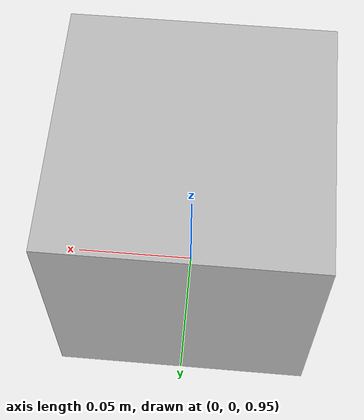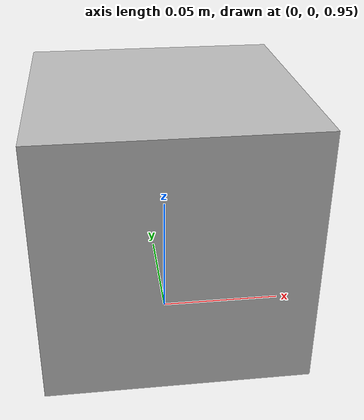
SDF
<sdf version="1.10">
	<world name="iflight_world">
		<physics type="ignored">
			<max_step_size>0.001</max_step_size>
			<real_time_factor>1.0</real_time_factor>
		</physics>
        <plugin name='gz::sim::systems::Physics' filename='gz-sim-physics-system'/>
        <plugin name='gz::sim::systems::Sensors' filename='gz-sim-sensors-system'>
            <render_engine>ogre2</render_engine>
        </plugin>
        <plugin name='gz::sim::systems::UserCommands' filename='gz-sim-user-commands-system'/>
        <plugin name='gz::sim::systems::SceneBroadcaster' filename='gz-sim-scene-broadcaster-system'/>
        <scene>
            <ambient>1 1 1 1</ambient>
            <background>0.800000012 0.800000012 0.800000012 1</background>
            <grid>true</grid>
            <shadows>true</shadows>
            <sky/>
        </scene>

        <gui fullscreen='false'>
            <plugin name='3D View' filename='MinimalScene'>
                <gz-gui>
                <title>3D View</title>
                <property type='bool' key='showTitleBar'>false</property>
                <property type='string' key='state'>docked</property>
                </gz-gui>
                <engine>ogre2</engine>
                <scene>scene</scene>
                <ambient_light>0.4 0.4 0.4</ambient_light>
                <background_color>0.8 0.8 0.8</background_color>
                <camera_pose>-6 0 6 0 0.5 0</camera_pose>
            </plugin>
            <plugin name='Entity context menu' filename='EntityContextMenuPlugin'>
                <gz-gui>
                <property key='state' type='string'>floating</property>
                <property key='width' type='double'>5</property>
                <property key='height' type='double'>5</property>
                <property key='showTitleBar' type='bool'>false</property>
                </gz-gui>
            </plugin>
            <plugin name='Scene Manager' filename='GzSceneManager'>
                <gz-gui>
                <property key='resizable' type='bool'>false</property>
                <property key='width' type='double'>5</property>
                <property key='height' type='double'>5</property>
                <property key='state' type='string'>floating</property>
                <property key='showTitleBar' type='bool'>false</property>
                </gz-gui>
            </plugin>
            <plugin name='Interactive view control' filename='InteractiveViewControl'>
                <gz-gui>
                <property key='resizable' type='bool'>false</property>
                <property key='width' type='double'>5</property>
                <property key='height' type='double'>5</property>
                <property key='state' type='string'>floating</property>
                <property key='showTitleBar' type='bool'>false</property>
                </gz-gui>
            </plugin>
            <plugin name='Camera Tracking' filename='CameraTracking'>
                <gz-gui>
                <property key='resizable' type='bool'>false</property>
                <property key='width' type='double'>5</property>
                <property key='height' type='double'>5</property>
                <property key='state' type='string'>floating</property>
                <property key='showTitleBar' type='bool'>false</property>
                </gz-gui>
            </plugin>
            <plugin name='World control' filename='WorldControl'>
                <gz-gui>
                <title>World control</title>
                <property type='bool' key='showTitleBar'>false</property>
                <property type='bool' key='resizable'>false</property>
                <property type='double' key='height'>72</property>
                <property type='double' key='z'>1</property>
                <property type='string' key='state'>floating</property>
                <anchors target='3D View'>
                    <line own='left' target='left'/>
                    <line own='bottom' target='bottom'/>
                </anchors>
                </gz-gui>
                <play_pause>true</play_pause>
                <step>true</step>
                <start_paused>true</start_paused>
                <use_event>true</use_event>
            </plugin>
            <plugin name='World stats' filename='WorldStats'>
                <gz-gui>
                <title>World stats</title>
                <property type='bool' key='showTitleBar'>false</property>
                <property type='bool' key='resizable'>false</property>
                <property type='double' key='height'>110</property>
                <property type='double' key='width'>290</property>
                <property type='double' key='z'>1</property>
                <property type='string' key='state'>floating</property>
                <anchors target='3D View'>
                    <line own='right' target='right'/>
                    <line own='bottom' target='bottom'/>
                </anchors>
                </gz-gui>
                <sim_time>true</sim_time>
                <real_time>true</real_time>
                <real_time_factor>true</real_time_factor>
                <iterations>true</iterations>
            </plugin>
            <plugin name='Image Display' filename='ImageDisplay'>
                <gz-gui>
                <property key='state' type='string'>docked</property>
                </gz-gui>
                <topic>camera</topic>
            </plugin>
            <plugin name='Component inspector' filename='ComponentInspector'>
                <gz-gui>
                <property type='string' key='state'>docked</property>
                </gz-gui>
            </plugin>
            <plugin name='Entity tree' filename='EntityTree'>
                <gz-gui>
                <property type='string' key='state'>docked</property>
                </gz-gui>
            </plugin>
        </gui>
        <model name="camera_model">
            <link name="camera_link">
            <pose>0 0 1 0 0 0</pose>
            <visual name="visual">
                <geometry>
                <box>
                    <size>0.1 0.1 0.1</size>
                </box>
                </geometry>
            </visual>
            <sensor name="camera" type="camera">
                <camera>
                <horizontal_fov>1.047</horizontal_fov>
                <image>
                    <width>320</width>
                    <height>240</height>
                </image>
                <clip>
                    <near>0.1</near>
                    <far>100</far>
                </clip>
                </camera>
                <always_on>1</always_on>
                <update_rate>30</update_rate>
                <visualize>true</visualize>
                <topic>camera</topic>
            </sensor>
            </link>
        </model>
	</world>
</sdf>
